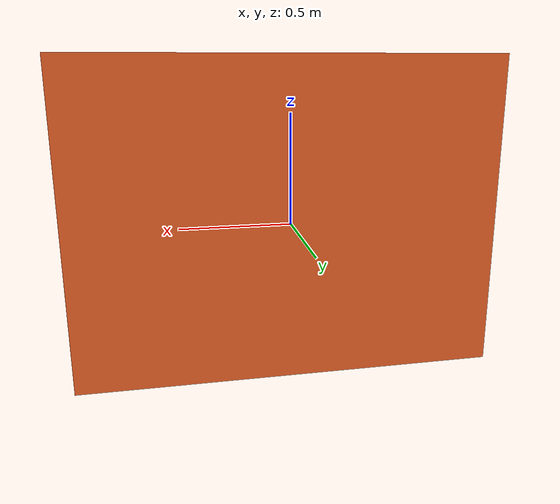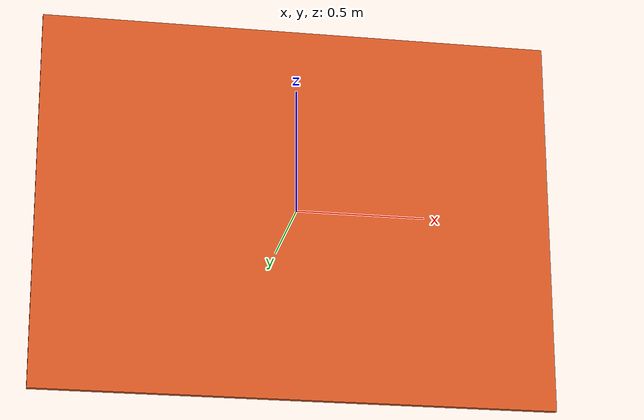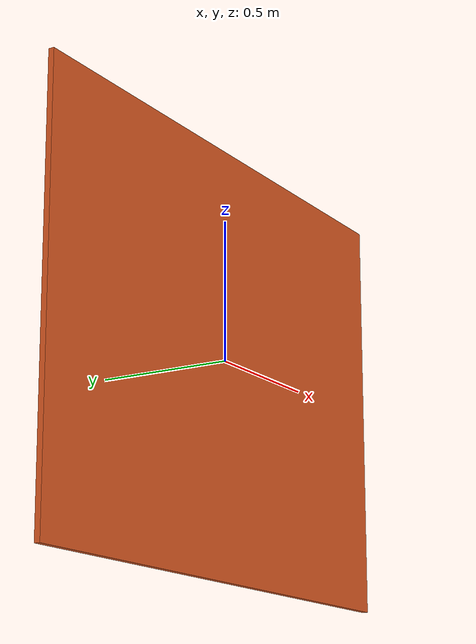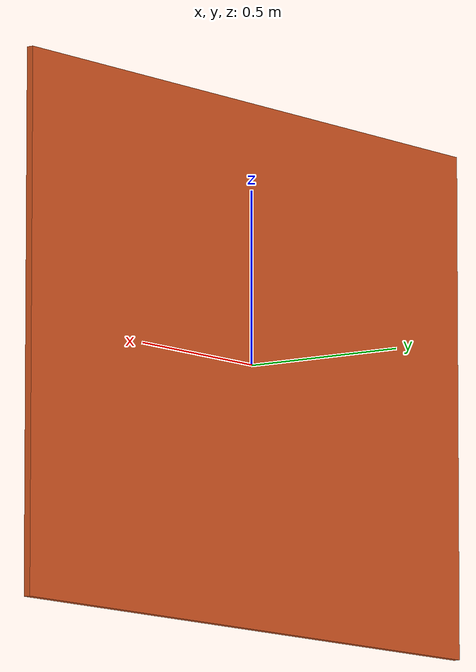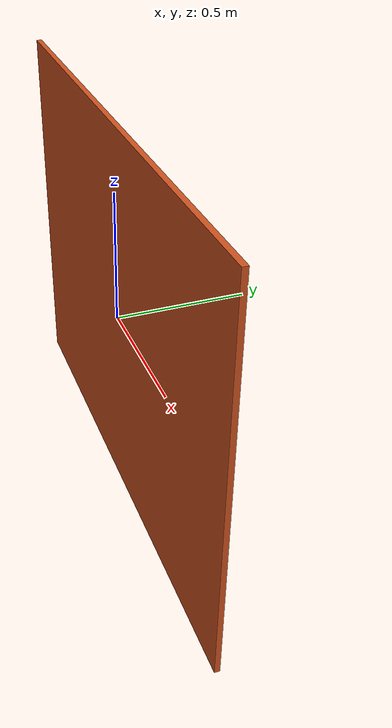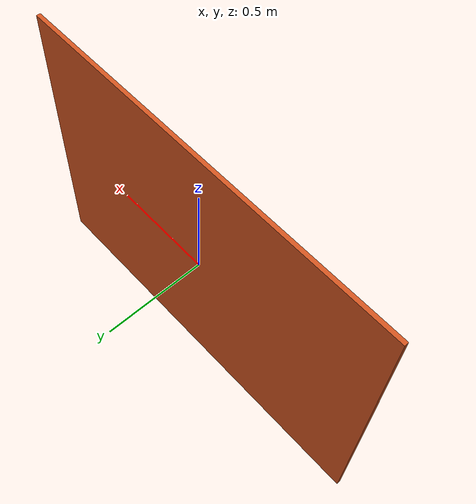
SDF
<?xml version="1.0" ?>
<sdf version="1.5">
  <model name="LaViRIA_panel_M">
    <link name="link">
    <static>true</static>
      <inertial>
        <pose>0 0 0 0 0 0</pose>
        <mass>40.99911667</mass>
        <inertia>
          <ixx>7.68882916</ixx>
          <iyy>21.35337917</iyy>
          <izz>13.66796666</izz>
          <ixy>0</ixy>
          <ixz>0</ixz>
        </inertia>
      </inertial>
      <collision name="collision">
        <geometry>
          <mesh>
            <uri>model://LaViRIA_panel_M/meshes/LaViRIA_panel_M.dae</uri>
          </mesh>
        </geometry>
      </collision>
      <visual name="visual">
        <geometry>
          <mesh>
            <uri>model://LaViRIA_panel_M/meshes/LaViRIA_panel_M.dae</uri>
          </mesh>
        </geometry>
         <material>
          <ambient>0.8 0.32 0.12 1.0</ambient>
          <diffuse>0.8 0.32 0.12 1.0</diffuse>
          <specular>0.8 0.32 0.12 1.0</specular>
          <emissive>0.8 0.32 0.12 1.0</emissive>
        </material>
      </visual>
    </link>
  </model>
</sdf>
